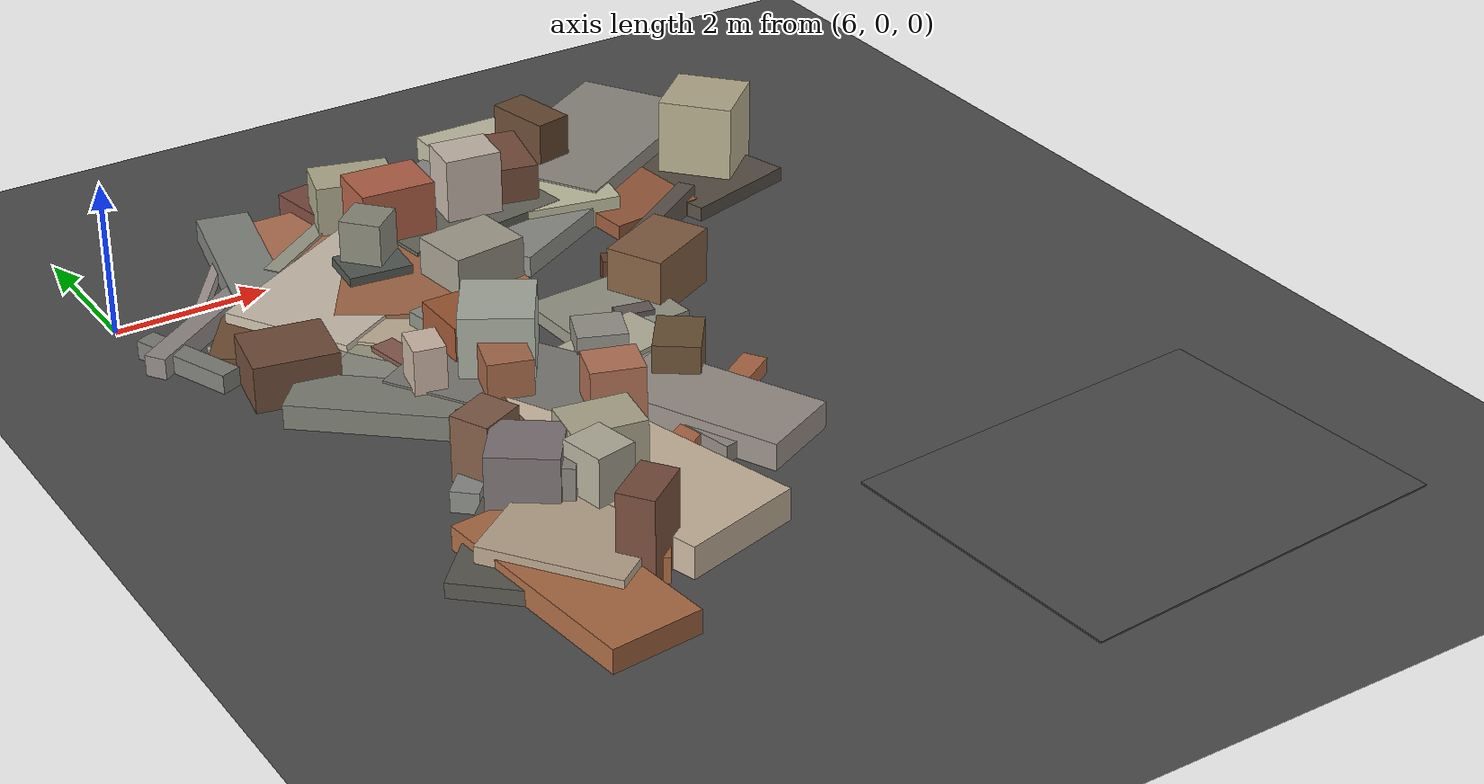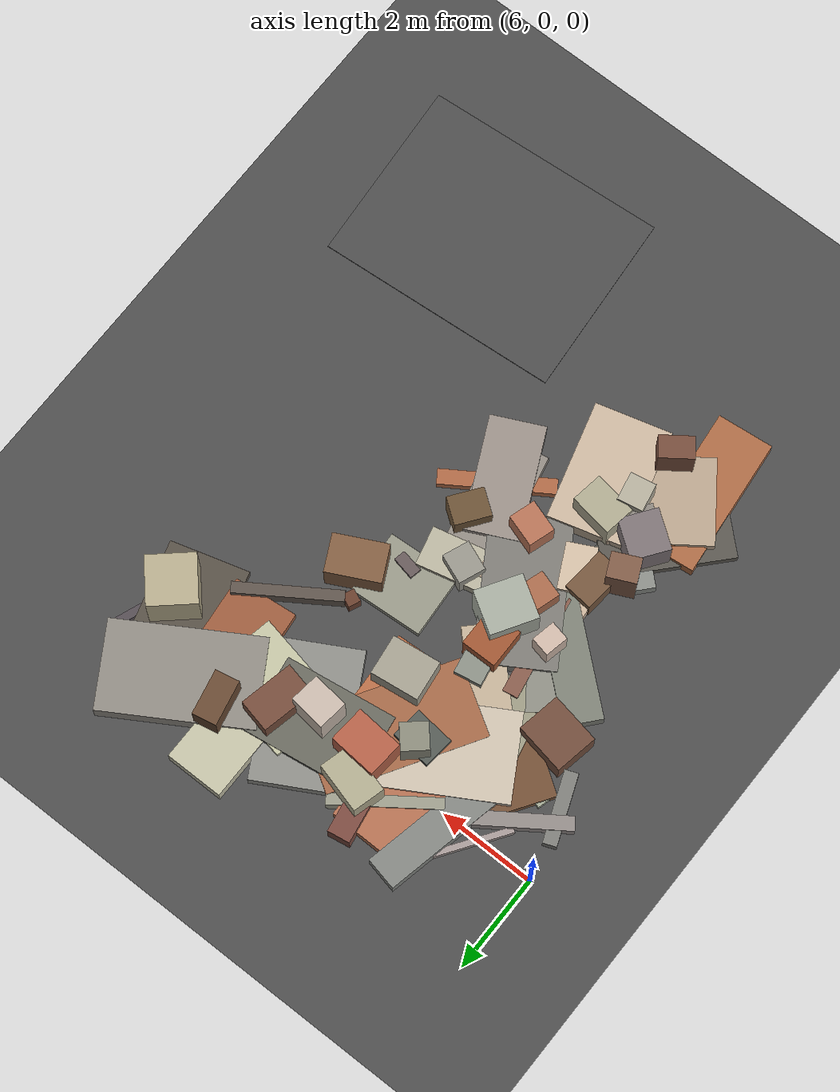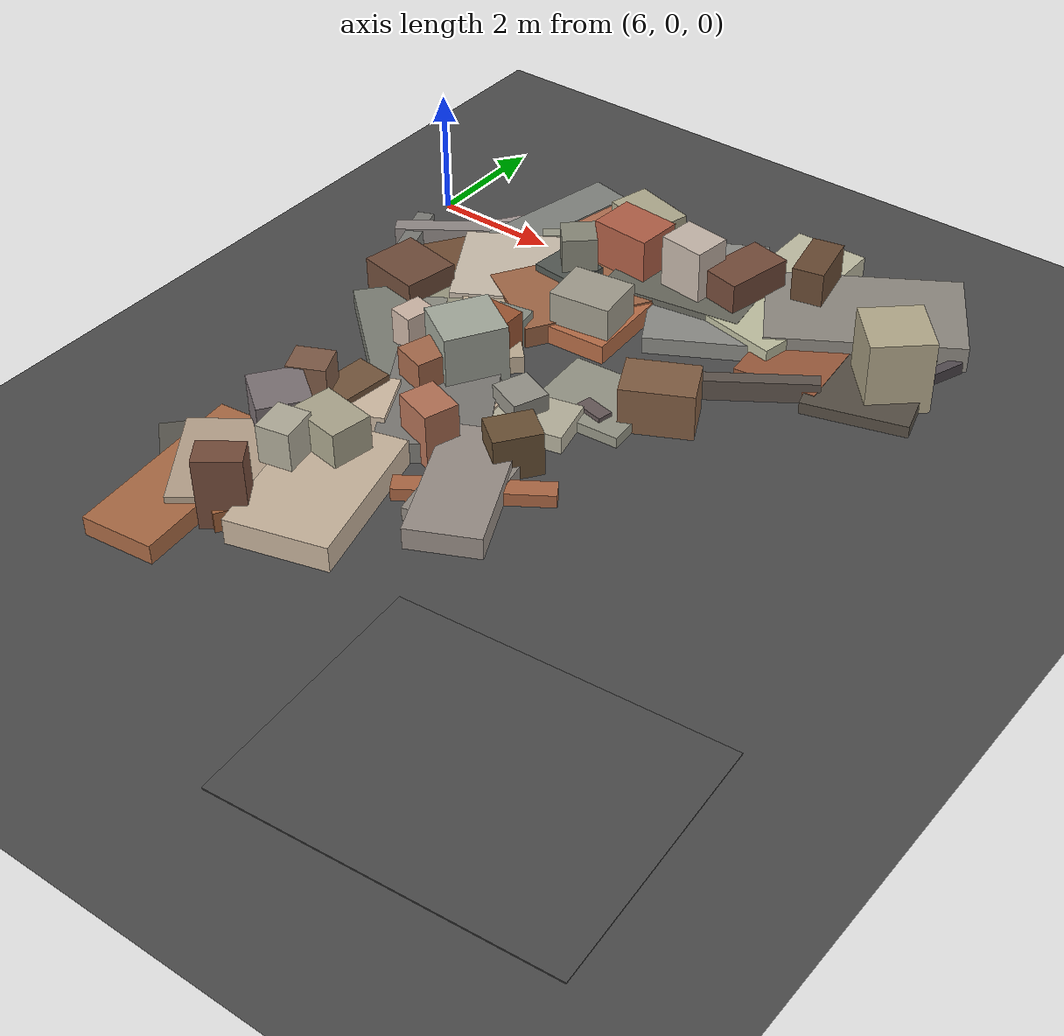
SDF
<sdf version="1.6">
 <world name="navitas_arena">
  <model name="ground_plane">
   <static>true</static>
   <link name="link">
    <collision name="collision">
     <geometry><plane><normal>0 0 1</normal><size>400 400</size></plane></geometry>
     <surface><friction><ode><mu>0.800</mu><mu2>0.800</mu2></ode></friction></surface>
    </collision>
    <visual name="visual">
     <cast_shadows>false</cast_shadows>
     <geometry><plane><normal>0 0 1</normal><size>400 400</size></plane></geometry>
     <material>
      <specular>0.04 0.04 0.04 1</specular>
      <script>
       <uri>file://media/materials/scripts/navitas_asphalt.material</uri>
       <name>Navitas/RealArenaAsphalt</name>
      </script>
     </material>
    </visual>
   </link>
  </model>
  <model name="road_orta_3_8">
   <static>true</static>
   <pose>14.275 -9.460 0.040 0 0 1.647</pose>
   <link name="link">
    <collision name="col"><geometry><box><size>3.828 5.000 0.020</size></box></geometry></collision>
    <visual name="vis">
     <geometry><box><size>3.828 5.000 0.020</size></box></geometry>
     <material>
      <specular>0.04 0.04 0.04 1</specular>
      <script>
       <uri>file://media/materials/scripts/navitas_asphalt.material</uri>
       <name>Navitas/RealArenaAsphalt</name>
      </script>
     </material>
    </visual>
   </link>
  </model>
  <model name="deb_orta_1">
   <static>true</static>
   <pose>12.593 0.632 0.000 0 0 0</pose>
   <link name="link">
    <collision name="col_0">
     <pose>-0.625 0.528 0.167 0.000 0.000 1.571</pose>
     <geometry><box><size>2.315 1.197 0.334</size></box></geometry>
    </collision>
    <visual name="vis_0">
     <pose>-0.625 0.528 0.167 0.000 0.000 1.571</pose>
     <geometry><box><size>2.315 1.197 0.334</size></box></geometry>
     <material>
      <ambient>0.70 0.69 0.60 1</ambient>
      <diffuse>0.76 0.75 0.65 1</diffuse>
      <specular>0.05 0.05 0.045 1</specular>
     </material>
    </visual>
    <collision name="col_1">
     <pose>-0.600 -0.108 0.094 0.000 0.000 2.726</pose>
     <geometry><box><size>2.296 0.286 0.188</size></box></geometry>
    </collision>
    <visual name="vis_1">
     <pose>-0.600 -0.108 0.094 0.000 0.000 2.726</pose>
     <geometry><box><size>2.296 0.286 0.188</size></box></geometry>
     <material>
      <ambient>0.57 0.55 0.53 1</ambient>
      <diffuse>0.62 0.60 0.58 1</diffuse>
      <specular>0.05 0.05 0.045 1</specular>
     </material>
    </visual>
    <collision name="col_2">
     <pose>0.381 0.785 0.154 0.000 0.000 3.209</pose>
     <geometry><box><size>2.013 0.294 0.308</size></box></geometry>
    </collision>
    <visual name="vis_2">
     <pose>0.381 0.785 0.154 0.000 0.000 3.209</pose>
     <geometry><box><size>2.013 0.294 0.308</size></box></geometry>
     <material>
      <ambient>0.71 0.67 0.61 1</ambient>
      <diffuse>0.77 0.72 0.65 1</diffuse>
      <specular>0.05 0.05 0.045 1</specular>
     </material>
    </visual>
    <collision name="col_3">
     <pose>0.606 0.221 0.093 0.000 0.000 3.497</pose>
     <geometry><box><size>0.405 0.472 0.187</size></box></geometry>
    </collision>
    <visual name="vis_3">
     <pose>0.606 0.221 0.093 0.000 0.000 3.497</pose>
     <geometry><box><size>0.405 0.472 0.187</size></box></geometry>
     <material>
      <ambient>0.46 0.45 0.41 1</ambient>
      <diffuse>0.50 0.48 0.45 1</diffuse>
      <specular>0.05 0.05 0.045 1</specular>
     </material>
    </visual>
    <collision name="col_4">
     <pose>-0.147 0.405 0.486 0.000 0.000 1.773</pose>
     <geometry><box><size>0.921 0.495 0.971</size></box></geometry>
    </collision>
    <visual name="vis_4">
     <pose>-0.147 0.405 0.486 0.000 0.000 1.773</pose>
     <geometry><box><size>0.921 0.495 0.971</size></box></geometry>
     <material>
      <ambient>0.38 0.27 0.18 1</ambient>
      <diffuse>0.41 0.29 0.20 1</diffuse>
      <specular>0.05 0.05 0.045 1</specular>
     </material>
    </visual>
   </link>
  </model>
  <model name="deb_orta_32">
   <static>true</static>
   <pose>7.404 -1.618 0.000 0 0 0</pose>
   <link name="link">
    <collision name="col_0">
     <pose>-0.599 0.298 0.065 0.000 0.000 2.879</pose>
     <geometry><box><size>0.300 0.294 0.129</size></box></geometry>
    </collision>
    <visual name="vis_0">
     <pose>-0.599 0.298 0.065 0.000 0.000 2.879</pose>
     <geometry><box><size>0.300 0.294 0.129</size></box></geometry>
     <material>
      <ambient>0.60 0.61 0.53 1</ambient>
      <diffuse>0.64 0.66 0.58 1</diffuse>
      <specular>0.05 0.05 0.045 1</specular>
     </material>
    </visual>
    <collision name="col_1">
     <pose>-0.491 0.975 0.138 0.000 0.000 0.603</pose>
     <geometry><box><size>2.270 0.282 0.276</size></box></geometry>
    </collision>
    <visual name="vis_1">
     <pose>-0.491 0.975 0.138 0.000 0.000 0.603</pose>
     <geometry><box><size>2.270 0.282 0.276</size></box></geometry>
     <material>
      <ambient>0.53 0.50 0.49 1</ambient>
      <diffuse>0.57 0.54 0.53 1</diffuse>
      <specular>0.05 0.05 0.045 1</specular>
     </material>
    </visual>
    <collision name="col_2">
     <pose>0.275 0.590 0.098 0.000 0.000 0.980</pose>
     <geometry><box><size>2.060 1.341 0.197</size></box></geometry>
    </collision>
    <visual name="vis_2">
     <pose>0.275 0.590 0.098 0.000 0.000 0.980</pose>
     <geometry><box><size>2.060 1.341 0.197</size></box></geometry>
     <material>
      <ambient>0.41 0.29 0.19 1</ambient>
      <diffuse>0.45 0.31 0.21 1</diffuse>
      <specular>0.05 0.05 0.045 1</specular>
     </material>
    </visual>
    <collision name="col_3">
     <pose>-0.188 -0.734 0.301 0.000 0.000 2.957</pose>
     <geometry><box><size>1.050 0.886 0.601</size></box></geometry>
    </collision>
    <visual name="vis_3">
     <pose>-0.188 -0.734 0.301 0.000 0.000 2.957</pose>
     <geometry><box><size>1.050 0.886 0.601</size></box></geometry>
     <material>
      <ambient>0.41 0.28 0.21 1</ambient>
      <diffuse>0.44 0.30 0.23 1</diffuse>
      <specular>0.05 0.05 0.045 1</specular>
     </material>
    </visual>
    <collision name="col_4">
     <pose>-1.040 0.258 0.123 0.000 0.000 1.939</pose>
     <geometry><box><size>1.430 0.274 0.246</size></box></geometry>
    </collision>
    <visual name="vis_4">
     <pose>-1.040 0.258 0.123 0.000 0.000 1.939</pose>
     <geometry><box><size>1.430 0.274 0.246</size></box></geometry>
     <material>
      <ambient>0.45 0.45 0.44 1</ambient>
      <diffuse>0.49 0.49 0.47 1</diffuse>
      <specular>0.05 0.05 0.045 1</specular>
     </material>
    </visual>
    <collision name="col_5">
     <pose>0.170 -1.096 0.115 0.000 0.000 0.486</pose>
     <geometry><box><size>0.238 0.294 0.229</size></box></geometry>
    </collision>
    <visual name="vis_5">
     <pose>0.170 -1.096 0.115 0.000 0.000 0.486</pose>
     <geometry><box><size>0.238 0.294 0.229</size></box></geometry>
     <material>
      <ambient>0.67 0.63 0.56 1</ambient>
      <diffuse>0.72 0.69 0.60 1</diffuse>
      <specular>0.05 0.05 0.045 1</specular>
     </material>
    </visual>
   </link>
  </model>
  <model name="deb_orta_36">
   <static>true</static>
   <pose>8.507 -5.856 0.000 0 0 0</pose>
   <link name="link">
    <collision name="col_0">
     <pose>0.658 -0.385 0.485 0.000 0.000 2.982</pose>
     <geometry><box><size>0.896 0.652 0.970</size></box></geometry>
    </collision>
    <visual name="vis_0">
     <pose>0.658 -0.385 0.485 0.000 0.000 2.982</pose>
     <geometry><box><size>0.896 0.652 0.970</size></box></geometry>
     <material>
      <ambient>0.63 0.62 0.52 1</ambient>
      <diffuse>0.68 0.66 0.56 1</diffuse>
      <specular>0.05 0.05 0.045 1</specular>
     </material>
    </visual>
    <collision name="col_1">
     <pose>-0.292 -0.400 0.484 0.000 0.000 2.516</pose>
     <geometry><box><size>0.844 0.802 0.968</size></box></geometry>
    </collision>
    <visual name="vis_1">
     <pose>-0.292 -0.400 0.484 0.000 0.000 2.516</pose>
     <geometry><box><size>0.844 0.802 0.968</size></box></geometry>
     <material>
      <ambient>0.45 0.42 0.42 1</ambient>
      <diffuse>0.49 0.45 0.46 1</diffuse>
      <specular>0.05 0.05 0.045 1</specular>
     </material>
    </visual>
    <collision name="col_2">
     <pose>-0.387 0.347 0.492 0.000 0.000 2.002</pose>
     <geometry><box><size>0.512 0.597 0.985</size></box></geometry>
    </collision>
    <visual name="vis_2">
     <pose>-0.387 0.347 0.492 0.000 0.000 2.002</pose>
     <geometry><box><size>0.512 0.597 0.985</size></box></geometry>
     <material>
      <ambient>0.47 0.33 0.26 1</ambient>
      <diffuse>0.50 0.36 0.28 1</diffuse>
      <specular>0.05 0.05 0.045 1</specular>
     </material>
    </visual>
    <collision name="col_3">
     <pose>0.231 -0.643 0.191 0.000 0.000 3.097</pose>
     <geometry><box><size>1.045 0.745 0.382</size></box></geometry>
    </collision>
    <visual name="vis_3">
     <pose>0.231 -0.643 0.191 0.000 0.000 3.097</pose>
     <geometry><box><size>1.045 0.745 0.382</size></box></geometry>
     <material>
      <ambient>0.57 0.57 0.48 1</ambient>
      <diffuse>0.61 0.61 0.52 1</diffuse>
      <specular>0.05 0.05 0.045 1</specular>
     </material>
    </visual>
    <collision name="col_4">
     <pose>-0.128 -0.641 0.410 0.000 0.000 0.933</pose>
     <geometry><box><size>0.479 0.606 0.819</size></box></geometry>
    </collision>
    <visual name="vis_4">
     <pose>-0.128 -0.641 0.410 0.000 0.000 0.933</pose>
     <geometry><box><size>0.479 0.606 0.819</size></box></geometry>
     <material>
      <ambient>0.50 0.48 0.45 1</ambient>
      <diffuse>0.54 0.52 0.49 1</diffuse>
      <specular>0.05 0.05 0.045 1</specular>
     </material>
    </visual>
    <collision name="col_5">
     <pose>-0.361 -0.577 0.087 0.000 0.000 1.199</pose>
     <geometry><box><size>1.967 0.911 0.175</size></box></geometry>
    </collision>
    <visual name="vis_5">
     <pose>-0.361 -0.577 0.087 0.000 0.000 1.199</pose>
     <geometry><box><size>1.967 0.911 0.175</size></box></geometry>
     <material>
      <ambient>0.30 0.30 0.27 1</ambient>
      <diffuse>0.32 0.32 0.30 1</diffuse>
      <specular>0.05 0.05 0.045 1</specular>
     </material>
    </visual>
    <collision name="col_6">
     <pose>-0.718 0.143 0.136 0.000 0.000 2.401</pose>
     <geometry><box><size>0.341 0.432 0.271</size></box></geometry>
    </collision>
    <visual name="vis_6">
     <pose>-0.718 0.143 0.136 0.000 0.000 2.401</pose>
     <geometry><box><size>0.341 0.432 0.271</size></box></geometry>
     <material>
      <ambient>0.50 0.51 0.49 1</ambient>
      <diffuse>0.54 0.55 0.53 1</diffuse>
      <specular>0.05 0.05 0.045 1</specular>
     </material>
    </visual>
   </link>
  </model>
  <model name="deb_orta_41">
   <static>true</static>
   <pose>9.947 -0.667 0.000 0 0 0</pose>
   <link name="link">
    <collision name="col_0">
     <pose>-0.172 0.680 0.545 0.000 0.000 1.490</pose>
     <geometry><box><size>0.746 0.979 1.089</size></box></geometry>
    </collision>
    <visual name="vis_0">
     <pose>-0.172 0.680 0.545 0.000 0.000 1.490</pose>
     <geometry><box><size>0.746 0.979 1.089</size></box></geometry>
     <material>
      <ambient>0.65 0.36 0.26 1</ambient>
      <diffuse>0.70 0.38 0.28 1</diffuse>
      <specular>0.05 0.05 0.045 1</specular>
     </material>
    </visual>
    <collision name="col_1">
     <pose>-0.048 0.471 0.068 0.000 0.000 1.678</pose>
     <geometry><box><size>0.401 0.231 0.137</size></box></geometry>
    </collision>
    <visual name="vis_1">
     <pose>-0.048 0.471 0.068 0.000 0.000 1.678</pose>
     <geometry><box><size>0.401 0.231 0.137</size></box></geometry>
     <material>
      <ambient>0.73 0.72 0.61 1</ambient>
      <diffuse>0.79 0.77 0.66 1</diffuse>
      <specular>0.05 0.05 0.045 1</specular>
     </material>
    </visual>
    <collision name="col_2">
     <pose>0.167 -0.892 0.423 0.000 0.000 1.696</pose>
     <geometry><box><size>0.818 0.989 0.846</size></box></geometry>
    </collision>
    <visual name="vis_2">
     <pose>0.167 -0.892 0.423 0.000 0.000 1.696</pose>
     <geometry><box><size>0.818 0.989 0.846</size></box></geometry>
     <material>
      <ambient>0.59 0.58 0.52 1</ambient>
      <diffuse>0.64 0.62 0.56 1</diffuse>
      <specular>0.05 0.05 0.045 1</specular>
     </material>
    </visual>
    <collision name="col_3">
     <pose>-0.262 0.003 0.171 0.000 0.000 1.018</pose>
     <geometry><box><size>3.170 1.575 0.341</size></box></geometry>
    </collision>
    <visual name="vis_3">
     <pose>-0.262 0.003 0.171 0.000 0.000 1.018</pose>
     <geometry><box><size>3.170 1.575 0.341</size></box></geometry>
     <material>
      <ambient>0.59 0.38 0.26 1</ambient>
      <diffuse>0.64 0.41 0.28 1</diffuse>
      <specular>0.05 0.05 0.045 1</specular>
     </material>
    </visual>
    <collision name="col_4">
     <pose>-0.784 0.044 0.508 0.000 0.000 2.289</pose>
     <geometry><box><size>0.544 0.542 1.015</size></box></geometry>
    </collision>
    <visual name="vis_4">
     <pose>-0.784 0.044 0.508 0.000 0.000 2.289</pose>
     <geometry><box><size>0.544 0.542 1.015</size></box></geometry>
     <material>
      <ambient>0.50 0.50 0.45 1</ambient>
      <diffuse>0.54 0.54 0.48 1</diffuse>
      <specular>0.05 0.05 0.045 1</specular>
     </material>
    </visual>
    <collision name="col_5">
     <pose>-0.069 -0.221 0.155 0.000 0.000 1.620</pose>
     <geometry><box><size>2.443 1.490 0.310</size></box></geometry>
    </collision>
    <visual name="vis_5">
     <pose>-0.069 -0.221 0.155 0.000 0.000 1.620</pose>
     <geometry><box><size>2.443 1.490 0.310</size></box></geometry>
     <material>
      <ambient>0.67 0.40 0.26 1</ambient>
      <diffuse>0.72 0.43 0.28 1</diffuse>
      <specular>0.05 0.05 0.045 1</specular>
     </material>
    </visual>
   </link>
  </model>
  <model name="deb_orta_47">
   <static>true</static>
   <pose>8.924 -3.655 0.000 0 0 0</pose>
   <link name="link">
    <collision name="col_0">
     <pose>-0.149 -0.469 0.063 0.000 0.000 -0.205</pose>
     <geometry><box><size>0.502 0.301 0.126</size></box></geometry>
    </collision>
    <visual name="vis_0">
     <pose>-0.149 -0.469 0.063 0.000 0.000 -0.205</pose>
     <geometry><box><size>0.502 0.301 0.126</size></box></geometry>
     <material>
      <ambient>0.59 0.57 0.51 1</ambient>
      <diffuse>0.63 0.61 0.55 1</diffuse>
      <specular>0.05 0.05 0.045 1</specular>
     </material>
    </visual>
    <collision name="col_1">
     <pose>0.202 -0.494 0.407 0.000 0.000 1.269</pose>
     <geometry><box><size>0.702 0.559 0.813</size></box></geometry>
    </collision>
    <visual name="vis_1">
     <pose>0.202 -0.494 0.407 0.000 0.000 1.269</pose>
     <geometry><box><size>0.702 0.559 0.813</size></box></geometry>
     <material>
      <ambient>0.61 0.39 0.27 1</ambient>
      <diffuse>0.66 0.42 0.30 1</diffuse>
      <specular>0.05 0.05 0.045 1</specular>
     </material>
    </visual>
    <collision name="col_2">
     <pose>-0.354 0.145 0.156 0.000 0.000 1.743</pose>
     <geometry><box><size>2.134 0.314 0.313</size></box></geometry>
    </collision>
    <visual name="vis_2">
     <pose>-0.354 0.145 0.156 0.000 0.000 1.743</pose>
     <geometry><box><size>2.134 0.314 0.313</size></box></geometry>
     <material>
      <ambient>0.49 0.33 0.28 1</ambient>
      <diffuse>0.53 0.36 0.30 1</diffuse>
      <specular>0.05 0.05 0.045 1</specular>
     </material>
    </visual>
    <collision name="col_3">
     <pose>-0.505 -0.127 0.128 0.000 0.000 2.194</pose>
     <geometry><box><size>2.810 0.910 0.255</size></box></geometry>
    </collision>
    <visual name="vis_3">
     <pose>-0.505 -0.127 0.128 0.000 0.000 2.194</pose>
     <geometry><box><size>2.810 0.910 0.255</size></box></geometry>
     <material>
      <ambient>0.51 0.51 0.47 1</ambient>
      <diffuse>0.55 0.55 0.51 1</diffuse>
      <specular>0.05 0.05 0.045 1</specular>
     </material>
    </visual>
    <collision name="col_4">
     <pose>0.083 -0.153 0.131 0.000 0.000 0.950</pose>
     <geometry><box><size>2.145 0.269 0.261</size></box></geometry>
    </collision>
    <visual name="vis_4">
     <pose>0.083 -0.153 0.131 0.000 0.000 0.950</pose>
     <geometry><box><size>2.145 0.269 0.261</size></box></geometry>
     <material>
      <ambient>0.67 0.64 0.57 1</ambient>
      <diffuse>0.73 0.69 0.61 1</diffuse>
      <specular>0.05 0.05 0.045 1</specular>
     </material>
    </visual>
    <collision name="col_5">
     <pose>-0.550 0.046 0.449 0.000 0.000 1.363</pose>
     <geometry><box><size>0.491 0.399 0.897</size></box></geometry>
    </collision>
    <visual name="vis_5">
     <pose>-0.550 0.046 0.449 0.000 0.000 1.363</pose>
     <geometry><box><size>0.491 0.399 0.897</size></box></geometry>
     <material>
      <ambient>0.75 0.67 0.61 1</ambient>
      <diffuse>0.81 0.72 0.66 1</diffuse>
      <specular>0.05 0.05 0.045 1</specular>
     </material>
    </visual>
   </link>
  </model>
  <model name="deb_orta_64">
   <static>true</static>
   <pose>9.046 -7.020 0.000 0 0 0</pose>
   <link name="link">
    <collision name="col_0">
     <pose>-0.229 0.221 0.516 0.000 0.000 0.192</pose>
     <geometry><box><size>0.525 0.582 1.033</size></box></geometry>
    </collision>
    <visual name="vis_0">
     <pose>-0.229 0.221 0.516 0.000 0.000 0.192</pose>
     <geometry><box><size>0.525 0.582 1.033</size></box></geometry>
     <material>
      <ambient>0.65 0.63 0.56 1</ambient>
      <diffuse>0.70 0.68 0.61 1</diffuse>
      <specular>0.05 0.05 0.045 1</specular>
     </material>
    </visual>
    <collision name="col_1">
     <pose>0.694 -0.382 0.151 0.000 0.000 1.277</pose>
     <geometry><box><size>0.300 0.423 0.301</size></box></geometry>
    </collision>
    <visual name="vis_1">
     <pose>0.694 -0.382 0.151 0.000 0.000 1.277</pose>
     <geometry><box><size>0.300 0.423 0.301</size></box></geometry>
     <material>
      <ambient>0.59 0.54 0.51 1</ambient>
      <diffuse>0.64 0.59 0.55 1</diffuse>
      <specular>0.05 0.05 0.045 1</specular>
     </material>
    </visual>
    <collision name="col_2">
     <pose>-0.085 -0.034 0.077 0.000 0.000 0.545</pose>
     <geometry><box><size>1.778 0.215 0.154</size></box></geometry>
    </collision>
    <visual name="vis_2">
     <pose>-0.085 -0.034 0.077 0.000 0.000 0.545</pose>
     <geometry><box><size>1.778 0.215 0.154</size></box></geometry>
     <material>
      <ambient>0.35 0.32 0.31 1</ambient>
      <diffuse>0.37 0.35 0.34 1</diffuse>
      <specular>0.05 0.05 0.045 1</specular>
     </material>
    </visual>
    <collision name="col_3">
     <pose>-0.601 -0.134 0.205 0.000 0.000 0.619</pose>
     <geometry><box><size>2.018 1.730 0.410</size></box></geometry>
    </collision>
    <visual name="vis_3">
     <pose>-0.601 -0.134 0.205 0.000 0.000 0.619</pose>
     <geometry><box><size>2.018 1.730 0.410</size></box></geometry>
     <material>
      <ambient>0.66 0.59 0.51 1</ambient>
      <diffuse>0.72 0.64 0.55 1</diffuse>
      <specular>0.05 0.05 0.045 1</specular>
     </material>
    </visual>
    <collision name="col_4">
     <pose>0.460 0.079 0.208 0.000 0.000 1.837</pose>
     <geometry><box><size>2.422 1.561 0.415</size></box></geometry>
    </collision>
    <visual name="vis_4">
     <pose>0.460 0.079 0.208 0.000 0.000 1.837</pose>
     <geometry><box><size>2.422 1.561 0.415</size></box></geometry>
     <material>
      <ambient>0.73 0.66 0.57 1</ambient>
      <diffuse>0.79 0.71 0.62 1</diffuse>
      <specular>0.05 0.05 0.045 1</specular>
     </material>
    </visual>
   </link>
  </model>
  <model name="deb_orta_71">
   <static>true</static>
   <pose>14.399 -0.097 0.000 0 0 0</pose>
   <link name="link">
    <collision name="col_0">
     <pose>0.050 -0.046 0.600 0.000 0.000 3.865</pose>
     <geometry><box><size>0.976 0.989 1.200</size></box></geometry>
    </collision>
    <visual name="vis_0">
     <pose>0.050 -0.046 0.600 0.000 0.000 3.865</pose>
     <geometry><box><size>0.976 0.989 1.200</size></box></geometry>
     <material>
      <ambient>0.65 0.62 0.51 1</ambient>
      <diffuse>0.71 0.67 0.55 1</diffuse>
      <specular>0.05 0.05 0.045 1</specular>
     </material>
    </visual>
    <collision name="col_1">
     <pose>0.254 -0.285 0.079 0.000 0.000 1.948</pose>
     <geometry><box><size>0.443 0.212 0.158</size></box></geometry>
    </collision>
    <visual name="vis_1">
     <pose>0.254 -0.285 0.079 0.000 0.000 1.948</pose>
     <geometry><box><size>0.443 0.212 0.158</size></box></geometry>
     <material>
      <ambient>0.76 0.72 0.61 1</ambient>
      <diffuse>0.82 0.78 0.66 1</diffuse>
      <specular>0.05 0.05 0.045 1</specular>
     </material>
    </visual>
    <collision name="col_2">
     <pose>0.224 0.146 0.092 0.000 0.000 4.342</pose>
     <geometry><box><size>1.963 0.167 0.184</size></box></geometry>
    </collision>
    <visual name="vis_2">
     <pose>0.224 0.146 0.092 0.000 0.000 4.342</pose>
     <geometry><box><size>1.963 0.167 0.184</size></box></geometry>
     <material>
      <ambient>0.30 0.28 0.30 1</ambient>
      <diffuse>0.33 0.30 0.32 1</diffuse>
      <specular>0.05 0.05 0.045 1</specular>
     </material>
    </visual>
    <collision name="col_3">
     <pose>-0.324 0.166 0.096 0.000 0.000 1.847</pose>
     <geometry><box><size>2.466 1.613 0.192</size></box></geometry>
    </collision>
    <visual name="vis_3">
     <pose>-0.324 0.166 0.096 0.000 0.000 1.847</pose>
     <geometry><box><size>2.466 1.613 0.192</size></box></geometry>
     <material>
      <ambient>0.31 0.29 0.25 1</ambient>
      <diffuse>0.34 0.31 0.27 1</diffuse>
      <specular>0.05 0.05 0.045 1</specular>
     </material>
    </visual>
   </link>
  </model>
  <model name="deb_orta_113">
   <static>true</static>
   <pose>8.090 -7.317 0.000 0 0 0</pose>
   <link name="link">
    <collision name="col_0">
     <pose>0.416 0.247 0.165 0.000 0.000 2.561</pose>
     <geometry><box><size>1.812 1.609 0.329</size></box></geometry>
    </collision>
    <visual name="vis_0">
     <pose>0.416 0.247 0.165 0.000 0.000 2.561</pose>
     <geometry><box><size>1.812 1.609 0.329</size></box></geometry>
     <material>
      <ambient>0.60 0.36 0.22 1</ambient>
      <diffuse>0.65 0.39 0.23 1</diffuse>
      <specular>0.05 0.05 0.045 1</specular>
     </material>
    </visual>
    <collision name="col_1">
     <pose>0.614 0.336 0.089 0.000 0.000 0.968</pose>
     <geometry><box><size>0.516 0.396 0.178</size></box></geometry>
    </collision>
    <visual name="vis_1">
     <pose>0.614 0.336 0.089 0.000 0.000 0.968</pose>
     <geometry><box><size>0.516 0.396 0.178</size></box></geometry>
     <material>
      <ambient>0.34 0.32 0.31 1</ambient>
      <diffuse>0.37 0.34 0.34 1</diffuse>
      <specular>0.05 0.05 0.045 1</specular>
     </material>
    </visual>
    <collision name="col_2">
     <pose>0.101 0.460 0.097 0.000 0.000 0.825</pose>
     <geometry><box><size>2.536 1.773 0.194</size></box></geometry>
    </collision>
    <visual name="vis_2">
     <pose>0.101 0.460 0.097 0.000 0.000 0.825</pose>
     <geometry><box><size>2.536 1.773 0.194</size></box></geometry>
     <material>
      <ambient>0.32 0.32 0.29 1</ambient>
      <diffuse>0.35 0.34 0.31 1</diffuse>
      <specular>0.05 0.05 0.045 1</specular>
     </material>
    </visual>
    <collision name="col_3">
     <pose>-0.194 -0.485 0.153 0.000 0.000 1.671</pose>
     <geometry><box><size>2.890 1.146 0.306</size></box></geometry>
    </collision>
    <visual name="vis_3">
     <pose>-0.194 -0.485 0.153 0.000 0.000 1.671</pose>
     <geometry><box><size>2.890 1.146 0.306</size></box></geometry>
     <material>
      <ambient>0.62 0.39 0.25 1</ambient>
      <diffuse>0.67 0.42 0.27 1</diffuse>
      <specular>0.05 0.05 0.045 1</specular>
     </material>
    </visual>
    <collision name="col_4">
     <pose>0.256 0.510 0.100 0.000 0.000 2.511</pose>
     <geometry><box><size>0.505 0.468 0.200</size></box></geometry>
    </collision>
    <visual name="vis_4">
     <pose>0.256 0.510 0.100 0.000 0.000 2.511</pose>
     <geometry><box><size>0.505 0.468 0.200</size></box></geometry>
     <material>
      <ambient>0.53 0.48 0.45 1</ambient>
      <diffuse>0.57 0.52 0.49 1</diffuse>
      <specular>0.05 0.05 0.045 1</specular>
     </material>
    </visual>
    <collision name="col_5">
     <pose>0.653 -0.604 0.574 0.000 0.000 0.626</pose>
     <geometry><box><size>0.699 0.453 1.148</size></box></geometry>
    </collision>
    <visual name="vis_5">
     <pose>0.653 -0.604 0.574 0.000 0.000 0.626</pose>
     <geometry><box><size>0.699 0.453 1.148</size></box></geometry>
     <material>
      <ambient>0.42 0.28 0.21 1</ambient>
      <diffuse>0.46 0.30 0.23 1</diffuse>
      <specular>0.05 0.05 0.045 1</specular>
     </material>
    </visual>
    <collision name="col_6">
     <pose>-0.016 -0.812 0.131 0.000 0.000 1.320</pose>
     <geometry><box><size>1.708 0.790 0.263</size></box></geometry>
    </collision>
    <visual name="vis_6">
     <pose>-0.016 -0.812 0.131 0.000 0.000 1.320</pose>
     <geometry><box><size>1.708 0.790 0.263</size></box></geometry>
     <material>
      <ambient>0.71 0.66 0.59 1</ambient>
      <diffuse>0.76 0.72 0.64 1</diffuse>
      <specular>0.05 0.05 0.045 1</specular>
     </material>
    </visual>
   </link>
  </model>
  <model name="deb_orta_127">
   <static>true</static>
   <pose>12.094 0.244 0.000 0 0 0</pose>
   <link name="link">
    <collision name="col_0">
     <pose>-0.267 0.241 0.111 0.000 0.000 2.260</pose>
     <geometry><box><size>0.464 0.285 0.221</size></box></geometry>
    </collision>
    <visual name="vis_0">
     <pose>-0.267 0.241 0.111 0.000 0.000 2.260</pose>
     <geometry><box><size>0.464 0.285 0.221</size></box></geometry>
     <material>
      <ambient>0.58 0.32 0.19 1</ambient>
      <diffuse>0.63 0.35 0.21 1</diffuse>
      <specular>0.05 0.05 0.045 1</specular>
     </material>
    </visual>
    <collision name="col_1">
     <pose>-0.508 0.084 0.437 0.000 0.000 1.353</pose>
     <geometry><box><size>1.108 0.681 0.874</size></box></geometry>
    </collision>
    <visual name="vis_1">
     <pose>-0.508 0.084 0.437 0.000 0.000 1.353</pose>
     <geometry><box><size>1.108 0.681 0.874</size></box></geometry>
     <material>
      <ambient>0.42 0.28 0.21 1</ambient>
      <diffuse>0.46 0.30 0.23 1</diffuse>
      <specular>0.05 0.05 0.045 1</specular>
     </material>
    </visual>
    <collision name="col_2">
     <pose>0.866 -0.122 0.102 0.000 0.000 1.674</pose>
     <geometry><box><size>2.565 1.302 0.204</size></box></geometry>
    </collision>
    <visual name="vis_2">
     <pose>0.866 -0.122 0.102 0.000 0.000 1.674</pose>
     <geometry><box><size>2.565 1.302 0.204</size></box></geometry>
     <material>
      <ambient>0.56 0.34 0.22 1</ambient>
      <diffuse>0.61 0.36 0.24 1</diffuse>
      <specular>0.05 0.05 0.045 1</specular>
     </material>
    </visual>
    <collision name="col_3">
     <pose>-0.829 -0.074 0.082 0.000 0.000 0.464</pose>
     <geometry><box><size>2.565 0.826 0.164</size></box></geometry>
    </collision>
    <visual name="vis_3">
     <pose>-0.829 -0.074 0.082 0.000 0.000 0.464</pose>
     <geometry><box><size>2.565 0.826 0.164</size></box></geometry>
     <material>
      <ambient>0.58 0.53 0.52 1</ambient>
      <diffuse>0.62 0.58 0.56 1</diffuse>
      <specular>0.05 0.05 0.045 1</specular>
     </material>
    </visual>
    <collision name="col_4">
     <pose>-0.322 -0.151 0.123 0.000 0.000 2.304</pose>
     <geometry><box><size>0.331 0.313 0.246</size></box></geometry>
    </collision>
    <visual name="vis_4">
     <pose>-0.322 -0.151 0.123 0.000 0.000 2.304</pose>
     <geometry><box><size>0.331 0.313 0.246</size></box></geometry>
     <material>
      <ambient>0.62 0.57 0.52 1</ambient>
      <diffuse>0.67 0.61 0.57 1</diffuse>
      <specular>0.05 0.05 0.045 1</specular>
     </material>
    </visual>
   </link>
  </model>
  <model name="deb_orta_149">
   <static>true</static>
   <pose>8.650 -3.692 0.000 0 0 0</pose>
   <link name="link">
    <collision name="col_0">
     <pose>0.715 0.114 0.565 0.000 0.000 2.588</pose>
     <geometry><box><size>0.903 0.975 1.130</size></box></geometry>
    </collision>
    <visual name="vis_0">
     <pose>0.715 0.114 0.565 0.000 0.000 2.588</pose>
     <geometry><box><size>0.903 0.975 1.130</size></box></geometry>
     <material>
      <ambient>0.60 0.62 0.57 1</ambient>
      <diffuse>0.65 0.67 0.62 1</diffuse>
      <specular>0.05 0.05 0.045 1</specular>
     </material>
    </visual>
    <collision name="col_1">
     <pose>0.594 0.695 0.390 0.000 0.000 3.150</pose>
     <geometry><box><size>0.725 0.804 0.780</size></box></geometry>
    </collision>
    <visual name="vis_1">
     <pose>0.594 0.695 0.390 0.000 0.000 3.150</pose>
     <geometry><box><size>0.725 0.804 0.780</size></box></geometry>
     <material>
      <ambient>0.58 0.31 0.19 1</ambient>
      <diffuse>0.62 0.34 0.20 1</diffuse>
      <specular>0.05 0.05 0.045 1</specular>
     </material>
    </visual>
    <collision name="col_2">
     <pose>0.220 -0.536 0.091 0.000 0.000 2.215</pose>
     <geometry><box><size>2.539 0.916 0.182</size></box></geometry>
    </collision>
    <visual name="vis_2">
     <pose>0.220 -0.536 0.091 0.000 0.000 2.215</pose>
     <geometry><box><size>2.539 0.916 0.182</size></box></geometry>
     <material>
      <ambient>0.45 0.29 0.23 1</ambient>
      <diffuse>0.48 0.32 0.25 1</diffuse>
      <specular>0.05 0.05 0.045 1</specular>
     </material>
    </visual>
    <collision name="col_3">
     <pose>-0.813 0.192 0.066 0.000 0.000 2.844</pose>
     <geometry><box><size>0.183 0.435 0.131</size></box></geometry>
    </collision>
    <visual name="vis_3">
     <pose>-0.813 0.192 0.066 0.000 0.000 2.844</pose>
     <geometry><box><size>0.183 0.435 0.131</size></box></geometry>
     <material>
      <ambient>0.75 0.69 0.62 1</ambient>
      <diffuse>0.81 0.75 0.67 1</diffuse>
      <specular>0.05 0.05 0.045 1</specular>
     </material>
    </visual>
    <collision name="col_4">
     <pose>-0.708 0.012 0.156 0.000 0.000 2.429</pose>
     <geometry><box><size>2.491 0.778 0.313</size></box></geometry>
    </collision>
    <visual name="vis_4">
     <pose>-0.708 0.012 0.156 0.000 0.000 2.429</pose>
     <geometry><box><size>2.491 0.778 0.313</size></box></geometry>
     <material>
      <ambient>0.45 0.46 0.43 1</ambient>
      <diffuse>0.49 0.50 0.46 1</diffuse>
      <specular>0.05 0.05 0.045 1</specular>
     </material>
    </visual>
   </link>
  </model>
  <model name="deb_orta_164">
   <static>true</static>
   <pose>11.083 -0.185 0.000 0 0 0</pose>
   <link name="link">
    <collision name="col_0">
     <pose>-0.013 0.326 0.139 0.000 0.000 -1.067</pose>
     <geometry><box><size>2.753 1.728 0.278</size></box></geometry>
    </collision>
    <visual name="vis_0">
     <pose>-0.013 0.326 0.139 0.000 0.000 -1.067</pose>
     <geometry><box><size>2.753 1.728 0.278</size></box></geometry>
     <material>
      <ambient>0.51 0.51 0.49 1</ambient>
      <diffuse>0.55 0.55 0.53 1</diffuse>
      <specular>0.05 0.05 0.045 1</specular>
     </material>
    </visual>
    <collision name="col_1">
     <pose>-0.212 0.288 0.140 0.000 0.000 0.889</pose>
     <geometry><box><size>1.932 0.312 0.280</size></box></geometry>
    </collision>
    <visual name="vis_1">
     <pose>-0.212 0.288 0.140 0.000 0.000 0.889</pose>
     <geometry><box><size>1.932 0.312 0.280</size></box></geometry>
     <material>
      <ambient>0.47 0.35 0.25 1</ambient>
      <diffuse>0.51 0.38 0.27 1</diffuse>
      <specular>0.05 0.05 0.045 1</specular>
     </material>
    </visual>
    <collision name="col_2">
     <pose>-0.323 0.335 0.195 0.000 0.000 0.144</pose>
     <geometry><box><size>2.281 1.588 0.389</size></box></geometry>
    </collision>
    <visual name="vis_2">
     <pose>-0.323 0.335 0.195 0.000 0.000 0.144</pose>
     <geometry><box><size>2.281 1.588 0.389</size></box></geometry>
     <material>
      <ambient>0.38 0.38 0.34 1</ambient>
      <diffuse>0.41 0.41 0.37 1</diffuse>
      <specular>0.05 0.05 0.045 1</specular>
     </material>
    </visual>
    <collision name="col_3">
     <pose>-0.200 0.174 0.620 0.000 0.000 -0.125</pose>
     <geometry><box><size>0.744 0.610 1.239</size></box></geometry>
    </collision>
    <visual name="vis_3">
     <pose>-0.200 0.174 0.620 0.000 0.000 -0.125</pose>
     <geometry><box><size>0.744 0.610 1.239</size></box></geometry>
     <material>
      <ambient>0.72 0.66 0.62 1</ambient>
      <diffuse>0.78 0.72 0.67 1</diffuse>
      <specular>0.05 0.05 0.045 1</specular>
     </material>
    </visual>
   </link>
  </model>
  <model name="deb_orta_171">
   <static>true</static>
   <pose>8.411 0.323 0.000 0 0 0</pose>
   <link name="link">
    <collision name="col_0">
     <pose>-0.951 0.093 0.076 0.000 0.000 0.966</pose>
     <geometry><box><size>2.325 0.121 0.153</size></box></geometry>
    </collision>
    <visual name="vis_0">
     <pose>-0.951 0.093 0.076 0.000 0.000 0.966</pose>
     <geometry><box><size>2.325 0.121 0.153</size></box></geometry>
     <material>
      <ambient>0.60 0.56 0.55 1</ambient>
      <diffuse>0.65 0.60 0.59 1</diffuse>
      <specular>0.05 0.05 0.045 1</specular>
     </material>
    </visual>
    <collision name="col_1">
     <pose>0.524 0.205 0.159 0.000 0.000 0.625</pose>
     <geometry><box><size>2.167 0.222 0.318</size></box></geometry>
    </collision>
    <visual name="vis_1">
     <pose>0.524 0.205 0.159 0.000 0.000 0.625</pose>
     <geometry><box><size>2.167 0.222 0.318</size></box></geometry>
     <material>
      <ambient>0.57 0.57 0.50 1</ambient>
      <diffuse>0.61 0.61 0.54 1</diffuse>
      <specular>0.05 0.05 0.045 1</specular>
     </material>
    </visual>
    <collision name="col_2">
     <pose>0.829 0.854 0.219 0.000 0.000 1.733</pose>
     <geometry><box><size>0.836 0.458 0.438</size></box></geometry>
    </collision>
    <visual name="vis_2">
     <pose>0.829 0.854 0.219 0.000 0.000 1.733</pose>
     <geometry><box><size>0.836 0.458 0.438</size></box></geometry>
     <material>
      <ambient>0.44 0.27 0.23 1</ambient>
      <diffuse>0.48 0.29 0.25 1</diffuse>
      <specular>0.05 0.05 0.045 1</specular>
     </material>
    </visual>
    <collision name="col_3">
     <pose>0.337 0.155 0.138 0.000 0.000 -0.010</pose>
     <geometry><box><size>1.578 1.639 0.277</size></box></geometry>
    </collision>
    <visual name="vis_3">
     <pose>0.337 0.155 0.138 0.000 0.000 -0.010</pose>
     <geometry><box><size>1.578 1.639 0.277</size></box></geometry>
     <material>
      <ambient>0.65 0.41 0.30 1</ambient>
      <diffuse>0.70 0.44 0.32 1</diffuse>
      <specular>0.05 0.05 0.045 1</specular>
     </material>
    </visual>
    <collision name="col_4">
     <pose>1.170 0.338 0.470 0.000 0.000 -0.269</pose>
     <geometry><box><size>1.032 0.664 0.940</size></box></geometry>
    </collision>
    <visual name="vis_4">
     <pose>1.170 0.338 0.470 0.000 0.000 -0.269</pose>
     <geometry><box><size>1.032 0.664 0.940</size></box></geometry>
     <material>
      <ambient>0.64 0.62 0.52 1</ambient>
      <diffuse>0.69 0.67 0.56 1</diffuse>
      <specular>0.05 0.05 0.045 1</specular>
     </material>
    </visual>
    <collision name="col_5">
     <pose>-0.531 -0.024 0.153 0.000 0.000 1.359</pose>
     <geometry><box><size>2.716 0.678 0.305</size></box></geometry>
    </collision>
    <visual name="vis_5">
     <pose>-0.531 -0.024 0.153 0.000 0.000 1.359</pose>
     <geometry><box><size>2.716 0.678 0.305</size></box></geometry>
     <material>
      <ambient>0.47 0.48 0.46 1</ambient>
      <diffuse>0.51 0.52 0.50 1</diffuse>
      <specular>0.05 0.05 0.045 1</specular>
     </material>
    </visual>
   </link>
  </model>
  <model name="deb_orta_184">
   <static>true</static>
   <pose>10.230 -4.452 0.000 0 0 0</pose>
   <link name="link">
    <collision name="col_0">
     <pose>0.337 0.585 0.279 0.000 0.000 2.763</pose>
     <geometry><box><size>0.619 0.560 0.558</size></box></geometry>
    </collision>
    <visual name="vis_0">
     <pose>0.337 0.585 0.279 0.000 0.000 2.763</pose>
     <geometry><box><size>0.619 0.560 0.558</size></box></geometry>
     <material>
      <ambient>0.54 0.54 0.50 1</ambient>
      <diffuse>0.59 0.58 0.54 1</diffuse>
      <specular>0.05 0.05 0.045 1</specular>
     </material>
    </visual>
    <collision name="col_1">
     <pose>-0.205 0.386 0.141 0.000 0.000 0.232</pose>
     <geometry><box><size>2.824 0.797 0.283</size></box></geometry>
    </collision>
    <visual name="vis_1">
     <pose>-0.205 0.386 0.141 0.000 0.000 0.232</pose>
     <geometry><box><size>2.824 0.797 0.283</size></box></geometry>
     <material>
      <ambient>0.66 0.65 0.58 1</ambient>
      <diffuse>0.72 0.70 0.62 1</diffuse>
      <specular>0.05 0.05 0.045 1</specular>
     </material>
    </visual>
    <collision name="col_2">
     <pose>-0.678 -0.145 0.148 0.000 0.000 1.804</pose>
     <geometry><box><size>0.205 0.217 0.296</size></box></geometry>
    </collision>
    <visual name="vis_2">
     <pose>-0.678 -0.145 0.148 0.000 0.000 1.804</pose>
     <geometry><box><size>0.205 0.217 0.296</size></box></geometry>
     <material>
      <ambient>0.41 0.41 0.37 1</ambient>
      <diffuse>0.45 0.44 0.40 1</diffuse>
      <specular>0.05 0.05 0.045 1</specular>
     </material>
    </visual>
    <collision name="col_3">
     <pose>0.319 0.047 0.099 0.000 0.000 0.282</pose>
     <geometry><box><size>0.218 0.435 0.197</size></box></geometry>
    </collision>
    <visual name="vis_3">
     <pose>0.319 0.047 0.099 0.000 0.000 0.282</pose>
     <geometry><box><size>0.218 0.435 0.197</size></box></geometry>
     <material>
      <ambient>0.46 0.41 0.38 1</ambient>
      <diffuse>0.49 0.44 0.41 1</diffuse>
      <specular>0.05 0.05 0.045 1</specular>
     </material>
    </visual>
    <collision name="col_4">
     <pose>0.901 -0.293 0.357 0.000 0.000 0.936</pose>
     <geometry><box><size>0.738 0.579 0.714</size></box></geometry>
    </collision>
    <visual name="vis_4">
     <pose>0.901 -0.293 0.357 0.000 0.000 0.936</pose>
     <geometry><box><size>0.738 0.579 0.714</size></box></geometry>
     <material>
      <ambient>0.39 0.29 0.19 1</ambient>
      <diffuse>0.42 0.32 0.21 1</diffuse>
      <specular>0.05 0.05 0.045 1</specular>
     </material>
    </visual>
   </link>
  </model>
  <model name="deb_orta_252">
   <static>true</static>
   <pose>10.679 -5.121 0.000 0 0 0</pose>
   <link name="link">
    <collision name="col_0">
     <pose>0.341 -0.573 0.175 0.000 0.000 2.012</pose>
     <geometry><box><size>2.322 1.109 0.350</size></box></geometry>
    </collision>
    <visual name="vis_0">
     <pose>0.341 -0.573 0.175 0.000 0.000 2.012</pose>
     <geometry><box><size>2.322 1.109 0.350</size></box></geometry>
     <material>
      <ambient>0.56 0.52 0.49 1</ambient>
      <diffuse>0.60 0.56 0.53 1</diffuse>
      <specular>0.05 0.05 0.045 1</specular>
     </material>
    </visual>
    <collision name="col_1">
     <pose>0.192 0.023 0.111 0.000 0.000 1.777</pose>
     <geometry><box><size>2.738 1.055 0.221</size></box></geometry>
    </collision>
    <visual name="vis_1">
     <pose>0.192 0.023 0.111 0.000 0.000 1.777</pose>
     <geometry><box><size>2.738 1.055 0.221</size></box></geometry>
     <material>
      <ambient>0.52 0.50 0.47 1</ambient>
      <diffuse>0.57 0.54 0.51 1</diffuse>
      <specular>0.05 0.05 0.045 1</specular>
     </material>
    </visual>
    <collision name="col_2">
     <pose>0.435 -0.463 0.104 0.000 0.000 3.717</pose>
     <geometry><box><size>2.275 0.306 0.207</size></box></geometry>
    </collision>
    <visual name="vis_2">
     <pose>0.435 -0.463 0.104 0.000 0.000 3.717</pose>
     <geometry><box><size>2.275 0.306 0.207</size></box></geometry>
     <material>
      <ambient>0.63 0.38 0.25 1</ambient>
      <diffuse>0.68 0.41 0.27 1</diffuse>
      <specular>0.05 0.05 0.045 1</specular>
     </material>
    </visual>
    <collision name="col_3">
     <pose>-0.694 -0.035 0.447 0.000 0.000 1.260</pose>
     <geometry><box><size>0.549 0.668 0.894</size></box></geometry>
    </collision>
    <visual name="vis_3">
     <pose>-0.694 -0.035 0.447 0.000 0.000 1.260</pose>
     <geometry><box><size>0.549 0.668 0.894</size></box></geometry>
     <material>
      <ambient>0.66 0.42 0.31 1</ambient>
      <diffuse>0.71 0.45 0.34 1</diffuse>
      <specular>0.05 0.05 0.045 1</specular>
     </material>
    </visual>
   </link>
  </model>
  <model name="deb_orta_266">
   <static>true</static>
   <pose>8.486 -3.851 0.000 0 0 0</pose>
   <link name="link">
    <collision name="col_0">
     <pose>0.907 -0.309 0.170 0.000 0.000 2.119</pose>
     <geometry><box><size>2.924 1.590 0.341</size></box></geometry>
    </collision>
    <visual name="vis_0">
     <pose>0.907 -0.309 0.170 0.000 0.000 2.119</pose>
     <geometry><box><size>2.924 1.590 0.341</size></box></geometry>
     <material>
      <ambient>0.45 0.44 0.43 1</ambient>
      <diffuse>0.49 0.48 0.46 1</diffuse>
      <specular>0.05 0.05 0.045 1</specular>
     </material>
    </visual>
    <collision name="col_1">
     <pose>0.381 -1.267 0.210 0.000 0.000 2.034</pose>
     <geometry><box><size>0.936 0.617 0.420</size></box></geometry>
    </collision>
    <visual name="vis_1">
     <pose>0.381 -1.267 0.210 0.000 0.000 2.034</pose>
     <geometry><box><size>0.936 0.617 0.420</size></box></geometry>
     <material>
      <ambient>0.76 0.68 0.60 1</ambient>
      <diffuse>0.82 0.74 0.65 1</diffuse>
      <specular>0.05 0.05 0.045 1</specular>
     </material>
    </visual>
    <collision name="col_2">
     <pose>-0.009 -1.261 0.259 0.000 0.000 1.471</pose>
     <geometry><box><size>0.925 0.602 0.518</size></box></geometry>
    </collision>
    <visual name="vis_2">
     <pose>-0.009 -1.261 0.259 0.000 0.000 1.471</pose>
     <geometry><box><size>0.925 0.602 0.518</size></box></geometry>
     <material>
      <ambient>0.42 0.32 0.22 1</ambient>
      <diffuse>0.46 0.34 0.24 1</diffuse>
      <specular>0.05 0.05 0.045 1</specular>
     </material>
    </visual>
    <collision name="col_3">
     <pose>0.823 -0.693 0.154 0.000 0.000 3.250</pose>
     <geometry><box><size>2.136 1.102 0.307</size></box></geometry>
    </collision>
    <visual name="vis_3">
     <pose>0.823 -0.693 0.154 0.000 0.000 3.250</pose>
     <geometry><box><size>2.136 1.102 0.307</size></box></geometry>
     <material>
      <ambient>0.73 0.65 0.57 1</ambient>
      <diffuse>0.79 0.70 0.61 1</diffuse>
      <specular>0.05 0.05 0.045 1</specular>
     </material>
    </visual>
   </link>
  </model>
  <model name="deb_orta_268">
   <static>true</static>
   <pose>12.682 0.525 0.000 0 0 0</pose>
   <link name="link">
    <collision name="col_0">
     <pose>-0.375 0.191 0.103 0.000 0.000 0.346</pose>
     <geometry><box><size>1.491 1.394 0.206</size></box></geometry>
    </collision>
    <visual name="vis_0">
     <pose>-0.375 0.191 0.103 0.000 0.000 0.346</pose>
     <geometry><box><size>1.491 1.394 0.206</size></box></geometry>
     <material>
      <ambient>0.56 0.56 0.52 1</ambient>
      <diffuse>0.61 0.60 0.56 1</diffuse>
      <specular>0.05 0.05 0.045 1</specular>
     </material>
    </visual>
    <collision name="col_1">
     <pose>0.659 0.463 0.205 0.000 0.000 0.542</pose>
     <geometry><box><size>3.018 1.774 0.410</size></box></geometry>
    </collision>
    <visual name="vis_1">
     <pose>0.659 0.463 0.205 0.000 0.000 0.542</pose>
     <geometry><box><size>3.018 1.774 0.410</size></box></geometry>
     <material>
      <ambient>0.52 0.50 0.47 1</ambient>
      <diffuse>0.56 0.54 0.51 1</diffuse>
      <specular>0.05 0.05 0.045 1</specular>
     </material>
    </visual>
    <collision name="col_2">
     <pose>0.165 0.294 0.109 0.000 0.000 0.530</pose>
     <geometry><box><size>0.306 0.419 0.218</size></box></geometry>
    </collision>
    <visual name="vis_2">
     <pose>0.165 0.294 0.109 0.000 0.000 0.530</pose>
     <geometry><box><size>0.306 0.419 0.218</size></box></geometry>
     <material>
      <ambient>0.35 0.33 0.35 1</ambient>
      <diffuse>0.38 0.35 0.37 1</diffuse>
      <specular>0.05 0.05 0.045 1</specular>
     </material>
    </visual>
    <collision name="col_3">
     <pose>-0.819 -0.377 0.192 0.000 0.000 -0.196</pose>
     <geometry><box><size>2.060 1.507 0.385</size></box></geometry>
    </collision>
    <visual name="vis_3">
     <pose>-0.819 -0.377 0.192 0.000 0.000 -0.196</pose>
     <geometry><box><size>2.060 1.507 0.385</size></box></geometry>
     <material>
      <ambient>0.71 0.70 0.60 1</ambient>
      <diffuse>0.76 0.76 0.64 1</diffuse>
      <specular>0.05 0.05 0.045 1</specular>
     </material>
    </visual>
    <collision name="col_4">
     <pose>0.723 -0.052 0.074 0.000 0.000 1.023</pose>
     <geometry><box><size>1.911 0.220 0.148</size></box></geometry>
    </collision>
    <visual name="vis_4">
     <pose>0.723 -0.052 0.074 0.000 0.000 1.023</pose>
     <geometry><box><size>1.911 0.220 0.148</size></box></geometry>
     <material>
      <ambient>0.40 0.26 0.16 1</ambient>
      <diffuse>0.43 0.28 0.18 1</diffuse>
      <specular>0.05 0.05 0.045 1</specular>
     </material>
    </visual>
   </link>
  </model>
  <model name="deb_orta_274">
   <static>true</static>
   <pose>11.965 -2.296 0.000 0 0 0</pose>
   <link name="link">
    <collision name="col_0">
     <pose>-0.549 -0.962 0.122 0.000 0.000 -0.203</pose>
     <geometry><box><size>0.475 0.240 0.245</size></box></geometry>
    </collision>
    <visual name="vis_0">
     <pose>-0.549 -0.962 0.122 0.000 0.000 -0.203</pose>
     <geometry><box><size>0.475 0.240 0.245</size></box></geometry>
     <material>
      <ambient>0.37 0.33 0.33 1</ambient>
      <diffuse>0.40 0.35 0.35 1</diffuse>
      <specular>0.05 0.05 0.045 1</specular>
     </material>
    </visual>
    <collision name="col_1">
     <pose>0.167 -0.367 0.375 0.000 0.000 0.461</pose>
     <geometry><box><size>1.106 0.775 0.750</size></box></geometry>
    </collision>
    <visual name="vis_1">
     <pose>0.167 -0.367 0.375 0.000 0.000 0.461</pose>
     <geometry><box><size>1.106 0.775 0.750</size></box></geometry>
     <material>
      <ambient>0.47 0.34 0.24 1</ambient>
      <diffuse>0.51 0.37 0.26 1</diffuse>
      <specular>0.05 0.05 0.045 1</specular>
     </material>
    </visual>
    <collision name="col_2">
     <pose>-0.147 0.207 0.161 0.000 0.000 1.169</pose>
     <geometry><box><size>0.255 0.271 0.321</size></box></geometry>
    </collision>
    <visual name="vis_2">
     <pose>-0.147 0.207 0.161 0.000 0.000 1.169</pose>
     <geometry><box><size>0.255 0.271 0.321</size></box></geometry>
     <material>
      <ambient>0.38 0.23 0.16 1</ambient>
      <diffuse>0.41 0.25 0.18 1</diffuse>
      <specular>0.05 0.05 0.045 1</specular>
     </material>
    </visual>
    <collision name="col_3">
     <pose>0.851 0.841 0.168 0.000 0.000 0.584</pose>
     <geometry><box><size>2.131 0.225 0.337</size></box></geometry>
    </collision>
    <visual name="vis_3">
     <pose>0.851 0.841 0.168 0.000 0.000 0.584</pose>
     <geometry><box><size>2.131 0.225 0.337</size></box></geometry>
     <material>
      <ambient>0.34 0.31 0.28 1</ambient>
      <diffuse>0.37 0.33 0.30 1</diffuse>
      <specular>0.05 0.05 0.045 1</specular>
     </material>
    </visual>
    <collision name="col_4">
     <pose>-0.731 -0.656 0.087 0.000 0.000 0.065</pose>
     <geometry><box><size>1.507 1.316 0.174</size></box></geometry>
    </collision>
    <visual name="vis_4">
     <pose>-0.731 -0.656 0.087 0.000 0.000 0.065</pose>
     <geometry><box><size>1.507 1.316 0.174</size></box></geometry>
     <material>
      <ambient>0.55 0.54 0.49 1</ambient>
      <diffuse>0.59 0.59 0.53 1</diffuse>
      <specular>0.05 0.05 0.045 1</specular>
     </material>
    </visual>
   </link>
  </model>
  <model name="deb_orta_290">
   <static>true</static>
   <pose>9.135 -1.666 0.000 0 0 0</pose>
   <link name="link">
    <collision name="col_0">
     <pose>-0.464 0.733 0.168 0.000 0.000 0.525</pose>
     <geometry><box><size>2.622 1.761 0.336</size></box></geometry>
    </collision>
    <visual name="vis_0">
     <pose>-0.464 0.733 0.168 0.000 0.000 0.525</pose>
     <geometry><box><size>2.622 1.761 0.336</size></box></geometry>
     <material>
      <ambient>0.74 0.70 0.63 1</ambient>
      <diffuse>0.80 0.75 0.68 1</diffuse>
      <specular>0.05 0.05 0.045 1</specular>
     </material>
    </visual>
    <collision name="col_1">
     <pose>-0.972 -0.023 0.091 0.000 0.000 -0.107</pose>
     <geometry><box><size>1.749 1.579 0.182</size></box></geometry>
    </collision>
    <visual name="vis_1">
     <pose>-0.972 -0.023 0.091 0.000 0.000 -0.107</pose>
     <geometry><box><size>1.749 1.579 0.182</size></box></geometry>
     <material>
      <ambient>0.28 0.27 0.29 1</ambient>
      <diffuse>0.30 0.29 0.31 1</diffuse>
      <specular>0.05 0.05 0.045 1</specular>
     </material>
    </visual>
    <collision name="col_2">
     <pose>0.087 -0.850 0.237 0.000 0.000 1.749</pose>
     <geometry><box><size>0.697 0.559 0.474</size></box></geometry>
    </collision>
    <visual name="vis_2">
     <pose>0.087 -0.850 0.237 0.000 0.000 1.749</pose>
     <geometry><box><size>0.697 0.559 0.474</size></box></geometry>
     <material>
      <ambient>0.50 0.51 0.48 1</ambient>
      <diffuse>0.54 0.56 0.52 1</diffuse>
      <specular>0.05 0.05 0.045 1</specular>
     </material>
    </visual>
    <collision name="col_3">
     <pose>-0.257 -0.766 0.144 0.000 0.000 -0.792</pose>
     <geometry><box><size>2.125 0.754 0.288</size></box></geometry>
    </collision>
    <visual name="vis_3">
     <pose>-0.257 -0.766 0.144 0.000 0.000 -0.792</pose>
     <geometry><box><size>2.125 0.754 0.288</size></box></geometry>
     <material>
      <ambient>0.70 0.64 0.55 1</ambient>
      <diffuse>0.76 0.69 0.59 1</diffuse>
      <specular>0.05 0.05 0.045 1</specular>
     </material>
    </visual>
    <collision name="col_4">
     <pose>-1.017 -0.151 0.124 0.000 0.000 1.769</pose>
     <geometry><box><size>2.037 1.032 0.247</size></box></geometry>
    </collision>
    <visual name="vis_4">
     <pose>-1.017 -0.151 0.124 0.000 0.000 1.769</pose>
     <geometry><box><size>2.037 1.032 0.247</size></box></geometry>
     <material>
      <ambient>0.56 0.55 0.47 1</ambient>
      <diffuse>0.61 0.60 0.51 1</diffuse>
      <specular>0.05 0.05 0.045 1</specular>
     </material>
    </visual>
    <collision name="col_5">
     <pose>-0.020 0.869 0.229 0.000 0.000 -0.105</pose>
     <geometry><box><size>0.828 0.644 0.457</size></box></geometry>
    </collision>
    <visual name="vis_5">
     <pose>-0.020 0.869 0.229 0.000 0.000 -0.105</pose>
     <geometry><box><size>0.828 0.644 0.457</size></box></geometry>
     <material>
      <ambient>0.30 0.32 0.31 1</ambient>
      <diffuse>0.33 0.35 0.33 1</diffuse>
      <specular>0.05 0.05 0.045 1</specular>
     </material>
    </visual>
    <collision name="col_6">
     <pose>-0.095 0.322 0.070 0.000 0.000 -0.437</pose>
     <geometry><box><size>0.281 0.459 0.139</size></box></geometry>
    </collision>
    <visual name="vis_6">
     <pose>-0.095 0.322 0.070 0.000 0.000 -0.437</pose>
     <geometry><box><size>0.281 0.459 0.139</size></box></geometry>
     <material>
      <ambient>0.62 0.59 0.56 1</ambient>
      <diffuse>0.67 0.64 0.61 1</diffuse>
      <specular>0.05 0.05 0.045 1</specular>
     </material>
    </visual>
   </link>
  </model>
 </world>
</sdf>
